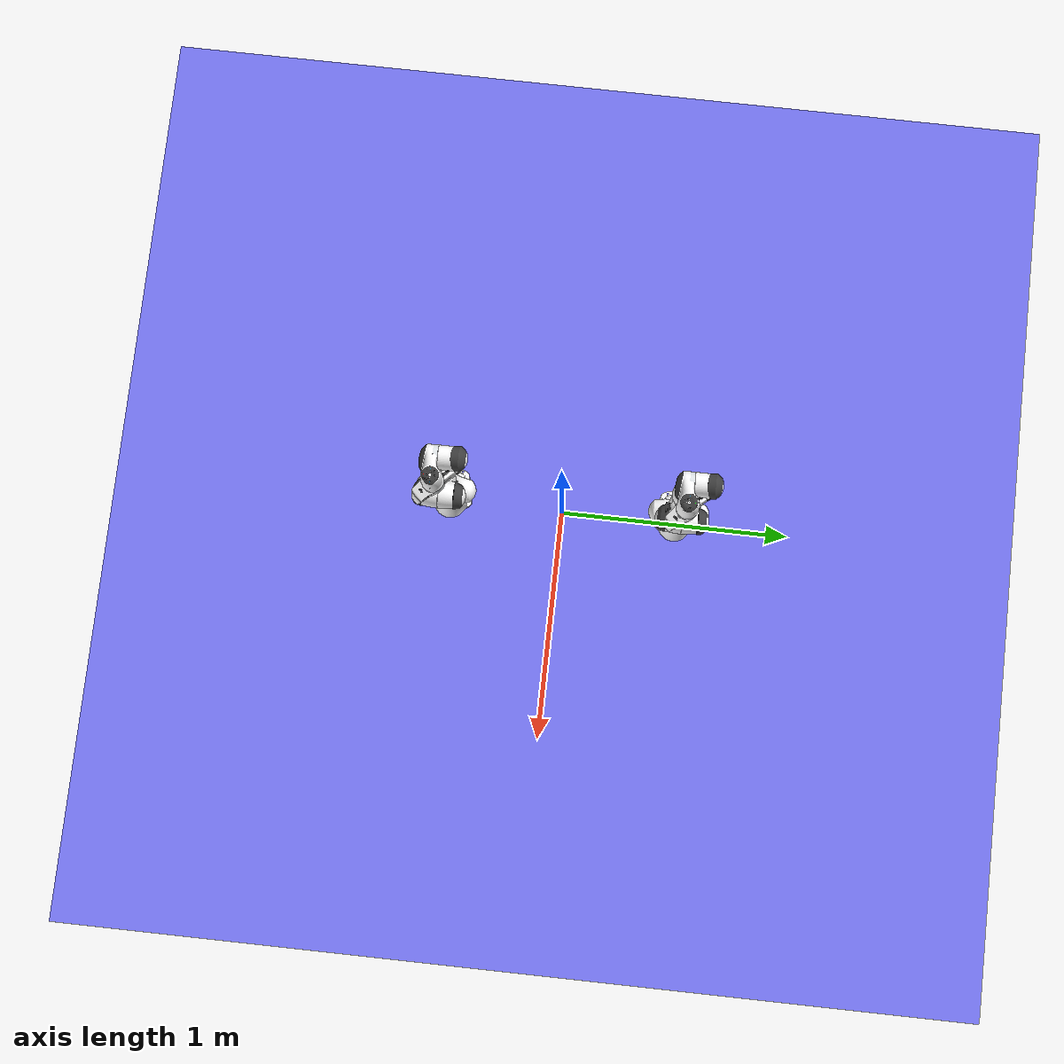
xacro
<?xml version="1.0"?>
<robot xmlns:xacro="http://www.ros.org/wiki/xacro" name="dual_panda">
    <xacro:arg name="initial_positions_file" default="initial_positions.yaml" />

    <!-- Import dual_panda urdf file -->
    <xacro:include filename="$(find dual_panda_description)/urdf/dual_panda.urdf.xacro" />

    <!-- Import control_xacro -->
    <xacro:include filename="dual_panda.ros2_control.xacro" />

    <xacro:dual_panda_ros2_control name="FakeSystem" initial_positions_file="$(arg initial_positions_file)"/>

</robot>

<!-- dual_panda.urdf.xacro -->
<robot name="dual_panda" xmlns:xacro="http://www.ros.org/wiki/xacro">

    <link name="world" />
    <xacro:include filename="$(find dual_panda_description)/urdf/panda.urdf.xacro"/>
    <xacro:panda prefix="L_" />
    <xacro:panda prefix="R_" />

    <joint name="L_panda_link_joint0" type="fixed">
        <origin
        xyz="0 0.5 0"
        rpy="0 0 0" />
        <parent link="world" />
        <child link="L_panda_link0" />
    </joint>

    <joint name="R_panda_link_joint0" type="fixed">
        <origin
        xyz="0 -0.5 0"
        rpy="0 0 0" />
        <parent link="world" />
        <child link="R_panda_link0" />
    </joint>

    <link name="ground">
        <visual>
        <origin rpy="0 0 0" xyz="0 0 0"/>
        <geometry>
            <box size="4 4 0.05"/>
        </geometry>
        <material name="ground_color">
            <color rgba="0.0 0.0 1.0 0.5"/>
        </material>
        </visual>
        <collision>
        <origin rpy="0 0 0" xyz="0 0 0"/>
        <geometry>
            <box size="5 5 0.05"/>
        </geometry>
        </collision>
    </link>
    <joint name="ground_joint" type="fixed">
        <origin rpy="0 0 0" xyz="0 0 -0.025"/>
        <parent link="world"/>
        <child link="ground"/>
    </joint>
</robot>

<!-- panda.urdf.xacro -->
<robot xmlns:xacro="http://ros.org/wiki/xacro">
    <xacro:macro name="panda" params="prefix" >

    <link name="${prefix}panda_link0">
        <visual>
            <geometry>
                <mesh filename="file://$(find moveit_resources_panda_description)/meshes/visual/link0.dae" />
            </geometry>
        </visual>
        <collision>
            <geometry>
                <mesh filename="file://$(find moveit_resources_panda_description)/meshes/collision/link0.stl" />
            </geometry>
        </collision>
        <inertial>
          <origin xyz="-0.041018 -0.00014 0.049974" rpy="0 0 0" />
          <mass value="0.629769"/>
          <inertia ixx="0.00315" iyy="0.00388" izz="0.004285" ixy="8.2904E-7" ixz="0.00015" iyz="8.2299E-6"/>
        </inertial>
    </link>
    <link name="${prefix}panda_link1">
        <visual>
            <geometry>
                <mesh filename="file://$(find moveit_resources_panda_description)/meshes/visual/link1.dae" />
            </geometry>
        </visual>
        <collision>
            <geometry>
                <mesh filename="file://$(find moveit_resources_panda_description)/meshes/collision/link1.stl" />
            </geometry>
        </collision>
        <inertial>
          <origin xyz="0.003875 0.002081 -0.04762" rpy="0 0 0" />
          <mass value="4.970684"/>
          <inertia ixx="0.70337" iyy="0.70661" izz="0.009117" ixy="-0.000139" ixz="0.006772" iyz="0.019169"/>
        </inertial>
    </link>
    <joint name="${prefix}panda_joint1" type="revolute">
        <safety_controller k_position="100.0" k_velocity="40.0" soft_lower_limit="-2.8973" soft_upper_limit="2.8973" />
        <origin rpy="0 0 0" xyz="0 0 0.333" />
        <parent link="${prefix}panda_link0" />
        <child link="${prefix}panda_link1" />
        <axis xyz="0 0 1" />
        <limit effort="87" lower="-2.9671" upper="2.9671" velocity="2.3925" />
        <dynamics D="1" K="7000" damping="0.003" friction="0.0" mu_coulomb="0" mu_viscous="16" />
    </joint>
    <link name="${prefix}panda_link2">
        <visual>
            <geometry>
                <mesh filename="file://$(find moveit_resources_panda_description)/meshes/visual/link2.dae" />
            </geometry>
        </visual>
        <collision>
            <geometry>
                <mesh filename="file://$(find moveit_resources_panda_description)/meshes/collision/link2.stl" />
            </geometry>
        </collision>
        <inertial>
          <origin xyz="-0.003141 -0.02872  0.003495" rpy="0 0 0" />
          <mass value="0.646926"/>
          <inertia ixx="0.007962" iyy="2.811E-2" izz="2.5995E-2" ixy="-3.925E-3" ixz="1.0254E-2" iyz="7.04E-4"/>
        </inertial>
    </link>
    <joint name="${prefix}panda_joint2" type="revolute">
        <safety_controller k_position="100.0" k_velocity="40.0" soft_lower_limit="-1.7628" soft_upper_limit="1.7628" />
        <origin rpy="-1.57079632679 0 0" xyz="0 0 0" />
        <parent link="${prefix}panda_link1" />
        <child link="${prefix}panda_link2" />
        <axis xyz="0 0 1" />
        <limit effort="87" lower="-1.8326" upper="1.8326" velocity="2.3925" />
        <dynamics D="1" K="7000" damping="0.003" friction="0.0" mu_coulomb="0" mu_viscous="16" />
    </joint>
    <link name="${prefix}panda_link3">
        <visual>
            <geometry>
                <mesh filename="file://$(find moveit_resources_panda_description)/meshes/visual/link3.dae" />
            </geometry>
        </visual>
        <collision>
            <geometry>
                <mesh filename="file://$(find moveit_resources_panda_description)/meshes/collision/link3.stl" />
            </geometry>
        </collision>
        <inertial>
          <origin xyz="2.7518E-2 3.9252E-2 -6.6502E-2" rpy="0 0 0" />
          <mass value="3.228604"/>
          <inertia ixx="3.7242E-2" iyy="3.6155E-2" izz="1.083E-2" ixy="-4.761E-3" ixz="-1.1396E-2" iyz="-1.2805E-2"/>
        </inertial>
    </link>
    <joint name="${prefix}panda_joint3" type="revolute">
        <safety_controller k_position="100.0" k_velocity="40.0" soft_lower_limit="-2.8973" soft_upper_limit="2.8973" />
        <origin rpy="1.57079632679 0 0" xyz="0 -0.316 0" />
        <parent link="${prefix}panda_link2" />
        <child link="${prefix}panda_link3" />
        <axis xyz="0 0 1" />
        <limit effort="87" lower="-2.9671" upper="2.9671" velocity="2.3925" />
        <dynamics D="1" K="7000" damping="0.003" friction="0.0" mu_coulomb="0" mu_viscous="16" />
    </joint>
    <link name="${prefix}panda_link4">
        <visual>
            <geometry>
                <mesh filename="file://$(find moveit_resources_panda_description)/meshes/visual/link4.dae" />
            </geometry>
        </visual>
        <collision>
            <geometry>
                <mesh filename="file://$(find moveit_resources_panda_description)/meshes/collision/link4.stl" />
            </geometry>
        </collision>
        <inertial>
          <origin xyz="-5.317E-2 1.04419E-1 2.7454E-2" rpy="0 0 0" />
          <mass value="3.587895"/>
          <inertia ixx="2.5853E-2" iyy="1.9552E-2" izz="2.8323E-2" ixy="7.796E-3" ixz="-1.332E-3" iyz="8.641E-3"/>
        </inertial>
    </link>
    <joint name="${prefix}panda_joint4" type="revolute">
        <safety_controller k_position="100.0" k_velocity="40.0" soft_lower_limit="-3.0718" soft_upper_limit="0.0175" />
        <origin rpy="1.57079632679 0 0" xyz="0.0825 0 0" />
        <parent link="${prefix}panda_link3" />
        <child link="${prefix}panda_link4" />
        <axis xyz="0 0 1" />
        <limit effort="87" lower="-3.1416" upper="0.0873" velocity="2.3925" />
        <dynamics D="1" K="7000" damping="0.003" friction="0.0" mu_coulomb="0" mu_viscous="16" />
    </joint>
    <link name="${prefix}panda_link5">
        <visual>
            <geometry>
                <mesh filename="file://$(find moveit_resources_panda_description)/meshes/visual/link5.dae" />
            </geometry>
        </visual>
        <collision>
            <geometry>
                <mesh filename="file://$(find moveit_resources_panda_description)/meshes/collision/link5.stl" />
            </geometry>
        </collision>
        <inertial>
          <origin xyz="-1.1953E-2 4.1065E-2 -3.8437E-2" rpy="0 0 0" />
          <mass value="1.225946"/>
          <inertia ixx="3.5549E-2" iyy="2.9474E-2" izz="8.627E-3" ixy="-2.117E-3" ixz="-4.037E-3" iyz="2.29E-4"/>
        </inertial>
    </link>
    <joint name="${prefix}panda_joint5" type="revolute">
        <safety_controller k_position="100.0" k_velocity="40.0" soft_lower_limit="-2.8973" soft_upper_limit="2.8973" />
        <origin rpy="-1.57079632679 0 0" xyz="-0.0825 0.384 0" />
        <parent link="${prefix}panda_link4" />
        <child link="${prefix}panda_link5" />
        <axis xyz="0 0 1" />
        <limit effort="12" lower="-2.9671" upper="2.9671" velocity="2.8710" />
        <dynamics D="1" K="7000" damping="0.003" friction="0.0" mu_coulomb="0" mu_viscous="16" />
    </joint>
    <link name="${prefix}panda_link6">
        <visual>
            <geometry>
                <mesh filename="file://$(find moveit_resources_panda_description)/meshes/visual/link6.dae" />
            </geometry>
        </visual>
        <collision>
            <geometry>
                <mesh filename="file://$(find moveit_resources_panda_description)/meshes/collision/link6.stl" />
            </geometry>
        </collision>
        <inertial>
          <origin xyz="6.0149E-2 -1.4117E-2 -1.0517E-2" rpy="0 0 0" />
          <mass value="1.666555"/>
          <inertia ixx="1.964E-3" iyy="4.354E-3" izz="5.433E-3" ixy="1.09E-4" ixz="-1.158E-3" iyz="3.41E-4"/>
        </inertial>
    </link>
    <joint name="${prefix}panda_joint6" type="revolute">
        <safety_controller k_position="100.0" k_velocity="40.0" soft_lower_limit="-0.0175" soft_upper_limit="3.7525" />
        <origin rpy="1.57079632679 0 0" xyz="0 0 0" />
        <parent link="${prefix}panda_link5" />
        <child link="${prefix}panda_link6" />
        <axis xyz="0 0 1" />
        <limit effort="12" lower="-0.0873" upper="3.8223" velocity="2.8710" />
        <dynamics D="1" K="7000" damping="0.003" friction="0.0" mu_coulomb="0" mu_viscous="16" />
    </joint>
    <link name="${prefix}panda_link7">
        <visual>
            <geometry>
                <mesh filename="file://$(find moveit_resources_panda_description)/meshes/visual/link7.dae" />
            </geometry>
        </visual>
        <collision>
            <geometry>
                <mesh filename="file://$(find moveit_resources_panda_description)/meshes/collision/link7.stl" />
            </geometry>
        </collision>
        <inertial>
          <origin xyz="1.0517E-2 -4.252E-3 6.1597E-2" rpy="0 0 0" />
          <mass value="7.35522E-1"/>
          <inertia ixx="1.2516E-2" iyy="1.0027E-2" izz="4.815E-3" ixy="-4.28E-4" ixz="-1.19E-3" iyz="-7.41E-4"/>
        </inertial>
    </link>
    <joint name="${prefix}panda_joint7" type="revolute">
        <safety_controller k_position="100.0" k_velocity="40.0" soft_lower_limit="-2.8973" soft_upper_limit="2.8973" />
        <origin rpy="1.57079632679 0 0" xyz="0.088 0 0" />
        <parent link="${prefix}panda_link6" />
        <child link="${prefix}panda_link7" />
        <axis xyz="0 0 1" />
        <limit effort="12" lower="-2.9671" upper="2.9671" velocity="2.8710" />
        <dynamics D="1" K="7000" damping="0.003" friction="0.0" mu_coulomb="0" mu_viscous="16" />
    </joint>
    <link name="${prefix}panda_link8" />
    <joint name="${prefix}panda_joint8" type="fixed">
        <origin rpy="0 0 0" xyz="0 0 0.107" />
        <parent link="${prefix}panda_link7" />
        <child link="${prefix}panda_link8" />
        <axis xyz="0 0 0" />
    </joint>
    <joint name="${prefix}panda_hand_joint" type="fixed">
        <parent link="${prefix}panda_link8" />
        <child link="${prefix}panda_hand" />
        <origin rpy="0 0 -0.785398163397" xyz="0 0 0" />
    </joint>
    <link name="${prefix}panda_hand">
        <visual>
            <geometry>
                <mesh filename="file://$(find moveit_resources_panda_description)/meshes/visual/hand.dae" />
            </geometry>
        </visual>
        <collision>
            <geometry>
                <mesh filename="file://$(find moveit_resources_panda_description)/meshes/collision/hand.stl" />
            </geometry>
        </collision>
        <inertial>
          <origin xyz="-0.01 0 0.03" rpy="0 0 0" />
          <mass value="0.73"/>
          <inertia ixx="0.001" iyy="0.0025" izz="0.0017" ixy="0" ixz="0" iyz="0"/>
        </inertial>
    </link>
    <link name="${prefix}panda_leftfinger">
        <visual>
            <geometry>
                <mesh filename="file://$(find moveit_resources_panda_description)/meshes/visual/finger.dae" />
            </geometry>
        </visual>
        <collision>
            <geometry>
                <mesh filename="file://$(find moveit_resources_panda_description)/meshes/collision/finger.stl" />
            </geometry>
        </collision>
        <inertial>
          <origin xyz="0 0 0" rpy="0 0 0" />
          <mass value="0.015"/>
          <inertia ixx="2.375E-6" iyy="2.375E-6" izz="7.5E-7" ixy="0" ixz="0" iyz="0"/>
        </inertial>
    </link>
    <link name="${prefix}panda_rightfinger">
        <visual>
            <origin rpy="0 0 3.14159265359" xyz="0 0 0" />
            <geometry>
                <mesh filename="file://$(find moveit_resources_panda_description)/meshes/visual/finger.dae" />
            </geometry>
        </visual>
        <collision>
            <origin rpy="0 0 3.14159265359" xyz="0 0 0" />
            <geometry>
                <mesh filename="file://$(find moveit_resources_panda_description)/meshes/collision/finger.stl" />
            </geometry>
        </collision>
        <inertial>
          <origin xyz="0 0 0" rpy="0 0 0" />
          <mass value="0.15"/>
          <inertia ixx="2.375E-6" iyy="2.375E-6" izz="7.5E-7" ixy="0" ixz="0" iyz="0"/>
        </inertial>
    </link>
    <joint name="${prefix}panda_finger_joint1" type="prismatic">
        <parent link="${prefix}panda_hand" />
        <child link="${prefix}panda_leftfinger" />
        <origin rpy="0 0 0" xyz="0 0 0.0584" />
        <axis xyz="0 1 0" />
        <limit effort="20" lower="0.0" upper="0.04" velocity="0.2" />
        <dynamics damping="0.3" />
    </joint>
    <joint name="${prefix}panda_finger_joint2" type="prismatic">
        <parent link="${prefix}panda_hand" />
        <child link="${prefix}panda_rightfinger" />
        <origin rpy="0 0 0" xyz="0 0 0.0584" />
        <axis xyz="0 -1 0" />
        <limit effort="20" lower="0.0" upper="0.04" velocity="0.2" />
        <mimic joint="${prefix}panda_finger_joint1" />
        <dynamics damping="0.3" />
    </joint>
    </xacro:macro>
</robot>
